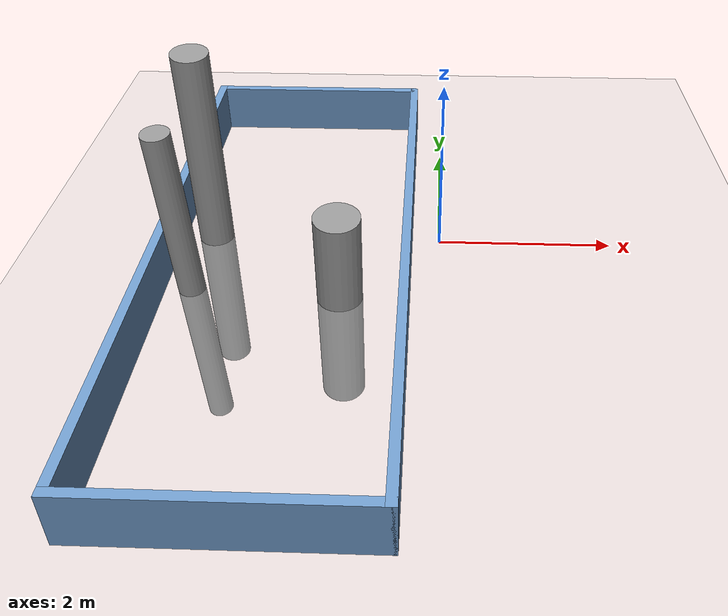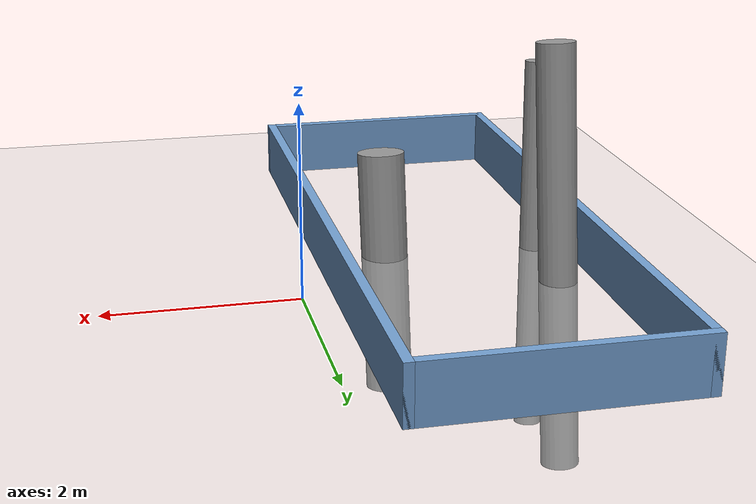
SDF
<sdf version="1.6">
 <world name="default">
  <light name="sun" type="directional">
   <pose>0 0 10 0 -0 0</pose>
   <diffuse>0.8 0.8 0.8 1</diffuse>
   <specular>0.2 0.2 0.2 1</specular>
   <attenuation>
    <range>1000</range>
    <constant>0.9</constant>
    <linear>0.01</linear>
    <quadratic>0.001</quadratic>
   </attenuation>
   <direction>-0.5 0.1 -0.9</direction>
  </light>
  <model name="ground_plane">
   <static>1</static>
   <link name="link">
    <collision name="collision">
     <geometry><plane><normal>0 0 1</normal><size>100 100</size></plane></geometry>
     <surface>
      <contact><collide_bitmask>65535</collide_bitmask></contact>
      <friction><ode><mu>100</mu><mu2>50</mu2></ode></friction>
     </surface>
    </collision>
    <visual name="visual">
     <cast_shadows>0</cast_shadows>
     <geometry><plane><normal>0 0 1</normal><size>100 100</size></plane></geometry>
     <material>
      <script><uri>file://media/materials/scripts/gazebo.material</uri><name>Gazebo/Grey</name></script>
     </material>
    </visual>
   </link>
  </model>
  <gravity>0 0 -9.8</gravity>
  <magnetic_field>6e-06 2.3e-05 -4.2e-05</magnetic_field>
  <atmosphere type="adiabatic"/>
  <physics name="default_physics" default="0" type="ode">
   <max_step_size>0.001</max_step_size>
   <real_time_factor>1</real_time_factor>
   <real_time_update_rate>1000</real_time_update_rate>
  </physics>
  <scene><ambient>0.4 0.4 0.4 1</ambient><background>0.7 0.7 0.7 1</background><shadows>1</shadows></scene>
  <audio><device>default</device></audio>
  <spherical_coordinates>
   <surface_model>EARTH_WGS84</surface_model>
   <latitude_deg>0</latitude_deg>
   <longitude_deg>0</longitude_deg>
   <elevation>0</elevation>
   <heading_deg>0</heading_deg>
  </spherical_coordinates>
  <model name="Wall_Constraint">
   <pose>-1.72004 -0.702086 0 0 -0 0</pose>
   <link name="Wall_0">
    <collision name="Wall_0_Collision">
     <geometry><box><size>7.19 0.1 0.6</size></box></geometry>
     <pose>0 0 0.3 0 -0 0</pose>
    </collision>
    <visual name="Wall_0_Visual">
     <pose>0 0 0.3 0 -0 0</pose>
     <geometry><box><size>7.19 0.1 0.6</size></box></geometry>
     <material>
      <script><uri>file://media/materials/scripts/gazebo.material</uri><name>Gazebo/Grey</name></script>
      <ambient>0.447059 0.623529 0.811765 1</ambient>
     </material>
     <meta><layer>0</layer></meta>
    </visual>
    <pose>1.35 0 0 0 -0 -1.5708</pose>
   </link>
   <link name="Wall_2">
    <collision name="Wall_2_Collision">
     <geometry><box><size>2.8 0.1 0.6</size></box></geometry>
     <pose>0 0 0.3 0 -0 0</pose>
    </collision>
    <visual name="Wall_2_Visual">
     <pose>0 0 0.3 0 -0 0</pose>
     <geometry><box><size>2.8 0.1 0.6</size></box></geometry>
     <material>
      <script><uri>file://media/materials/scripts/gazebo.material</uri><name>Gazebo/Grey</name></script>
      <ambient>0.447059 0.623529 0.811765 1</ambient>
     </material>
     <meta><layer>0</layer></meta>
    </visual>
    <pose>0 3.545 0 0 -0 0</pose>
   </link>
   <link name="Wall_4">
    <collision name="Wall_4_Collision">
     <geometry><box><size>7.19 0.1 0.6</size></box></geometry>
     <pose>0 0 0.3 0 -0 0</pose>
    </collision>
    <visual name="Wall_4_Visual">
     <pose>0 0 0.3 0 -0 0</pose>
     <geometry><box><size>7.19 0.1 0.6</size></box></geometry>
     <material>
      <script><uri>file://media/materials/scripts/gazebo.material</uri><name>Gazebo/Grey</name></script>
      <ambient>0.447059 0.623529 0.811765 1</ambient>
     </material>
     <meta><layer>0</layer></meta>
    </visual>
    <pose>-1.35 0 0 0 -0 1.5708</pose>
   </link>
   <link name="Wall_6">
    <collision name="Wall_6_Collision">
     <geometry><box><size>2.8 0.1 0.6</size></box></geometry>
     <pose>0 0 0.3 0 -0 0</pose>
    </collision>
    <visual name="Wall_6_Visual">
     <pose>0 0 0.3 0 -0 0</pose>
     <geometry><box><size>2.8 0.1 0.6</size></box></geometry>
     <material>
      <script><uri>file://media/materials/scripts/gazebo.material</uri><name>Gazebo/Grey</name></script>
      <ambient>0.447059 0.623529 0.811765 1</ambient>
     </material>
     <meta><layer>0</layer></meta>
    </visual>
    <pose>0 -3.545 0 0 -0 0</pose>
   </link>
   <static>1</static>
  </model>
  <model name="Rocks_Better2">
   <link name="link_0">
    <inertial>
     <mass>4.48082</mass>
     <inertia>
      <ixx>7.54219</ixx>
      <ixy>0</ixy>
      <ixz>0</ixz>
      <iyy>7.54219</iyy>
      <iyz>0</iyz>
      <izz>0.0896163</izz>
     </inertia>
    </inertial>
    <pose>-0.369962 -0.73438 0.057359 0.100188 -0 0</pose>
    <visual name="visual">
     <geometry><cylinder><radius>0.2</radius><length>4.48091</length></cylinder></geometry>
     <material>
      <lighting>1</lighting>
      <script><uri>file://media/materials/scripts/gazebo.material</uri><name>Gazebo/Grey</name></script>
      <shader type="vertex"><normal_map>__default__</normal_map></shader>
      <ambient>0.3 0.3 0.3 1</ambient>
      <diffuse>0.7 0.7 0.7 1</diffuse>
      <specular>0.01 0.01 0.01 1</specular>
      <emissive>0 0 0 1</emissive>
     </material>
    </visual>
    <collision name="collision">
     <geometry><cylinder><radius>0.2</radius><length>4.48091</length></cylinder></geometry>
     <surface>
      <friction>
       <ode><mu>1</mu><mu2>1</mu2><fdir1>0 0 0</fdir1><slip1>0</slip1><slip2>0</slip2></ode>
       <torsional>
        <coefficient>1</coefficient>
        <patch_radius>0</patch_radius>
        <surface_radius>0</surface_radius>
        <use_patch_radius>1</use_patch_radius>
        <ode><slip>0</slip></ode>
       </torsional>
      </friction>
      <bounce><restitution_coefficient>0</restitution_coefficient><threshold>1e+06</threshold></bounce>
      <contact>
       <collide_without_contact>0</collide_without_contact>
       <collide_without_contact_bitmask>1</collide_without_contact_bitmask>
       <collide_bitmask>1</collide_bitmask>
       <ode>
        <soft_cfm>0</soft_cfm>
        <soft_erp>0.2</soft_erp>
        <kp>1e+13</kp>
        <kd>1</kd>
        <max_vel>0.01</max_vel>
        <min_depth>0</min_depth>
       </ode>
       <bullet>
        <split_impulse>1</split_impulse>
        <split_impulse_penetration_threshold>-0.01</split_impulse_penetration_threshold>
        <soft_cfm>0</soft_cfm>
        <soft_erp>0.2</soft_erp>
        <kp>1e+13</kp>
        <kd>1</kd>
       </bullet>
      </contact>
     </surface>
    </collision>
   </link>
   <link name="link_1">
    <inertial>
     <mass>2.61121</mass>
     <inertia>
      <ixx>1.52449</ixx>
      <ixy>0</ixy>
      <ixz>0</ixz>
      <iyy>1.52449</iyy>
      <iyz>0</iyz>
      <izz>0.0816002</izz>
     </inertia>
    </inertial>
    <pose>0.184451 1.12333 0 0.105873 -0 0</pose>
    <visual name="visual">
     <geometry><cylinder><radius>0.25</radius><length>2.61121</length></cylinder></geometry>
     <material>
      <lighting>1</lighting>
      <script><uri>file://media/materials/scripts/gazebo.material</uri><name>Gazebo/Grey</name></script>
      <shader type="vertex"><normal_map>__default__</normal_map></shader>
      <ambient>0.3 0.3 0.3 1</ambient>
      <diffuse>0.7 0.7 0.7 1</diffuse>
      <specular>0.01 0.01 0.01 1</specular>
      <emissive>0 0 0 1</emissive>
     </material>
    </visual>
    <collision name="collision">
     <geometry><cylinder><radius>0.25</radius><length>2.6112</length></cylinder></geometry>
     <surface>
      <friction>
       <ode><mu>1</mu><mu2>1</mu2><fdir1>0 0 0</fdir1><slip1>0</slip1><slip2>0</slip2></ode>
       <torsional>
        <coefficient>1</coefficient>
        <patch_radius>0</patch_radius>
        <surface_radius>0</surface_radius>
        <use_patch_radius>1</use_patch_radius>
        <ode><slip>0</slip></ode>
       </torsional>
      </friction>
      <bounce><restitution_coefficient>0</restitution_coefficient><threshold>1e+06</threshold></bounce>
      <contact>
       <collide_without_contact>0</collide_without_contact>
       <collide_without_contact_bitmask>1</collide_without_contact_bitmask>
       <collide_bitmask>1</collide_bitmask>
       <ode>
        <soft_cfm>0</soft_cfm>
        <soft_erp>0.2</soft_erp>
        <kp>1e+13</kp>
        <kd>1</kd>
        <max_vel>0.01</max_vel>
        <min_depth>0</min_depth>
       </ode>
       <bullet>
        <split_impulse>1</split_impulse>
        <split_impulse_penetration_threshold>-0.01</split_impulse_penetration_threshold>
        <soft_cfm>0</soft_cfm>
        <soft_erp>0.2</soft_erp>
        <kp>1e+13</kp>
        <kd>1</kd>
       </bullet>
      </contact>
     </surface>
    </collision>
   </link>
   <link name="link_2">
    <inertial>
     <mass>4.08063</mass>
     <inertia>
      <ixx>5.68523</ixx>
      <ixy>0</ixy>
      <ixz>0</ixz>
      <iyy>5.68523</iyy>
      <iyz>0</iyz>
      <izz>0.0459071</izz>
     </inertia>
    </inertial>
    <pose>0.609793 -0.476955 -0.032656 0.146368 -0 0</pose>
    <visual name="visual">
     <geometry><cylinder><radius>0.15</radius><length>4.08059</length></cylinder></geometry>
     <material>
      <lighting>1</lighting>
      <script><uri>file://media/materials/scripts/gazebo.material</uri><name>Gazebo/Grey</name></script>
      <shader type="vertex"><normal_map>__default__</normal_map></shader>
      <ambient>0.3 0.3 0.3 1</ambient>
      <diffuse>0.7 0.7 0.7 1</diffuse>
      <specular>0.01 0.01 0.01 1</specular>
      <emissive>0 0 0 1</emissive>
     </material>
    </visual>
    <collision name="collision">
     <geometry><cylinder><radius>0.15</radius><length>4.08059</length></cylinder></geometry>
     <surface>
      <friction>
       <ode><mu>1</mu><mu2>1</mu2><fdir1>0 0 0</fdir1><slip1>0</slip1><slip2>0</slip2></ode>
       <torsional>
        <coefficient>1</coefficient>
        <patch_radius>0</patch_radius>
        <surface_radius>0</surface_radius>
        <use_patch_radius>1</use_patch_radius>
        <ode><slip>0</slip></ode>
       </torsional>
      </friction>
      <bounce><restitution_coefficient>0</restitution_coefficient><threshold>1e+06</threshold></bounce>
      <contact>
       <collide_without_contact>0</collide_without_contact>
       <collide_without_contact_bitmask>1</collide_without_contact_bitmask>
       <collide_bitmask>1</collide_bitmask>
       <ode>
        <soft_cfm>0</soft_cfm>
        <soft_erp>0.2</soft_erp>
        <kp>1e+13</kp>
        <kd>1</kd>
        <max_vel>0.01</max_vel>
        <min_depth>0</min_depth>
       </ode>
       <bullet>
        <split_impulse>1</split_impulse>
        <split_impulse_penetration_threshold>-0.01</split_impulse_penetration_threshold>
        <soft_cfm>0</soft_cfm>
        <soft_erp>0.2</soft_erp>
        <kp>1e+13</kp>
        <kd>1</kd>
       </bullet>
      </contact>
     </surface>
    </collision>
   </link>
   <static>0</static>
   <pose>-2.08634 -0.528143 0 -0.154255 0.089166 -1.89245</pose>
  </model>
 </world>
</sdf>
